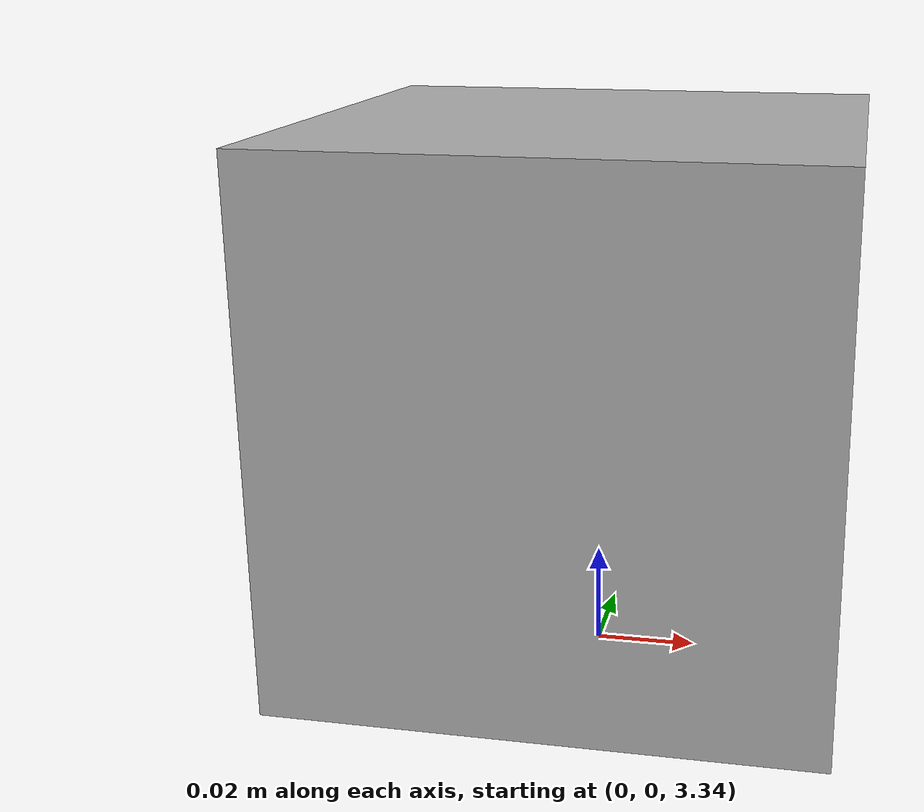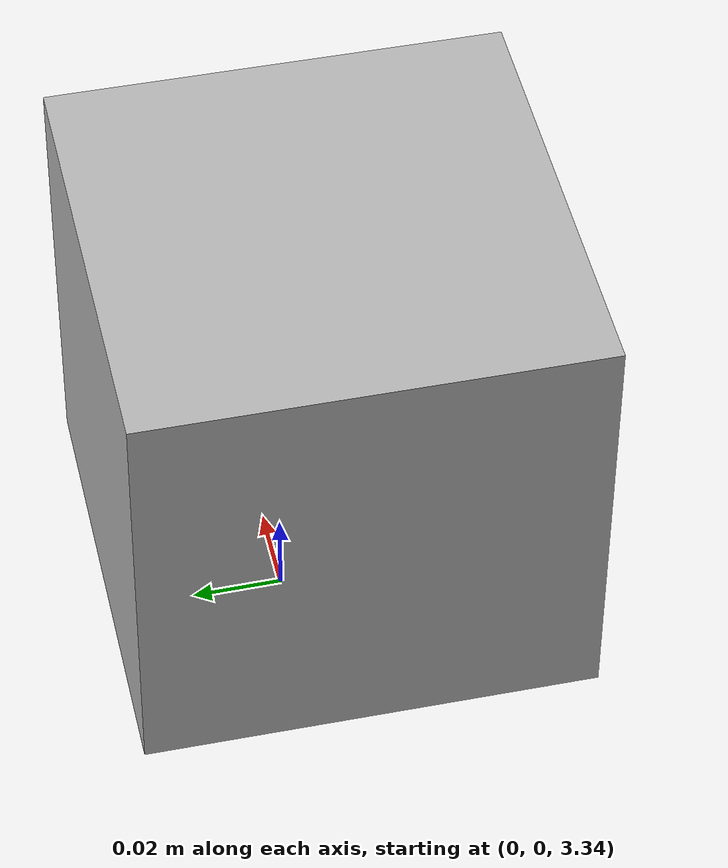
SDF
<?xml version="1.0" ?>
<!-- |    This document was autogenerated by xacro from /home/tom/catkin_ws/src/soccersim/worlds/soccer_field.world.xacro | -->
<!-- |    EDITING THIS FILE BY HAND IS NOT RECOMMENDED                                 | -->
<sdf version="1.4" xmlns:xacro="http://www.ros.org/wiki/xacro">
  <world name="default" xmlns:xacro="http://www.ros.org/wiki/xacro">
    <model name="camera">
      <pose>0.05 -0.06 3.45 -1.5707 1.5707 0</pose>
      <static>true</static>
      <link name="link">
        <gravity>false</gravity>
        <pose>0.05 0.05 0.05 0 0 0</pose>
        <inertial>
          <mass>0.1</mass>
        </inertial>
        <visual name="visual">
          <geometry>
            <box>
              <size>0.1 0.1 0.1</size>
            </box>
          </geometry>
        </visual>
        <sensor name="camera" type="camera">
          <camera>
            <horizontal_fov>1.047</horizontal_fov>
            <image>
              <width>640</width>
              <height>480</height>
              <format>R8G8B8</format>
            </image>
            <clip>
              <near>0.1</near>
              <far>100</far>
            </clip>
            <noise>
              <type>gaussian</type>
              <mean>0.0</mean>
              <stddev>0.007</stddev>
            </noise>
          </camera>
          <always_on>1</always_on>
          <update_rate>30.0</update_rate>
          <plugin filename="libgazebo_ros_camera.so" name="camera_controller">
            <alwaysOn>true</alwaysOn>
            <updateRate>0.0</updateRate>
            <cameraName>camera1</cameraName>
            <imageTopicName>image_raw</imageTopicName>
            <cameraInfoTopicName>camera_info</cameraInfoTopicName>
            <frameName>camera_link</frameName>
            <hackBaseline>0.07</hackBaseline>
            <distortionK1>0.0</distortionK1>
            <distortionK2>0.0</distortionK2>
            <distortionK3>0.0</distortionK3>
            <distortionT1>0.0</distortionT1>
            <distortionT2>0.0</distortionT2>
          </plugin>
        </sensor>
      </link>
    </model>
    <model name="soccer_field">
      <static>true</static>
      <link name="link">
        <pose>0 0 0 0 0 0</pose>
        <collision name="collision">
          <geometry>
            <mesh>
              <uri>/home/tom/catkin_ws/src/soccersim/meshes/field9_collision.dae</uri>
            </mesh>
          </geometry>
          <surface>
            <friction>
              <ode>
                <mu>0</mu>
                <mu2>0</mu2>
              </ode>
            </friction>
          </surface>
        </collision>
        <visual name="visual">
          <geometry>
            <mesh>
              <uri>/home/tom/catkin_ws/src/soccersim/meshes/field9_visual.dae</uri>
            </mesh>
          </geometry>
          <material>
            <ambient>.3 .3 .3 1</ambient>
            <diffuse>.6 .6 .6 1</diffuse>
            <specular>0.01 0.01 0.01 1</specular>
            <emissive>0 0 0 0</emissive>
          </material>
        </visual>
      </link>
    </model>
    <include>
      <uri>model://sun</uri>
    </include>
    <physics type="ode">
      <real_time_update_rate>1000</real_time_update_rate>
      <max_step_size>0.001</max_step_size>
    </physics>
  </world>
</sdf>
